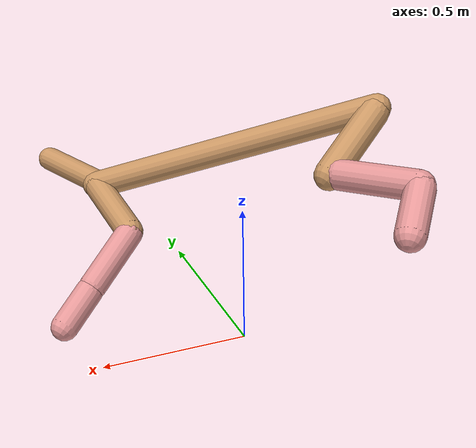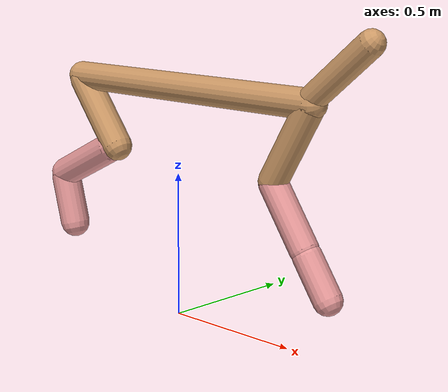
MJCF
<mujoco model="cheetah">
  <compiler angle="radian" coordinate="local" inertiafromgeom="true" settotalmass="14" />
  <default>
    <joint armature=".1" damping=".01" limited="true" solimplimit="0 .8 .03" solreflimit=".02 1" stiffness="8" />
    <geom conaffinity="0" condim="3" contype="1" friction="0.8 .1 .1" rgba="0.8 0.6 .4 1" solimp="0.0 0.8 0.01" solref="0.02 1" />
    <motor ctrllimited="true" ctrlrange="-1 1" />
  </default>
  <size nstack="300000" nuser_geom="1" />
  <option gravity="0 0 -9.81" timestep="0.01" />
  <worldbody>
    <body name="torso" pos="0.0 0.0 0.7977409576837379">
      <joint armature="0" axis="1 0 0" damping="0" limited="false" name="ignorex" pos="0 0 0" stiffness="0" type="slide" />
      <joint armature="0" axis="0 0 1" damping="0" limited="false" name="ignorez" pos="0 0 0" stiffness="0" type="slide" />
      <joint armature="0" axis="0 1 0" damping="0" limited="false" name="ignorey" pos="0 0 0" stiffness="0" type="hinge" />
      <geom fromto="-0.5 0.0 0.0 0.5793421692939226 0.0 0.0" name="torso" size="0.04958423123042548" type="capsule" />
      <geom axisangle="0 1 0 .87" name="head" pos="0.6793421692939224 0.0 0.1" size="0.043394904240748176 0.15" type="capsule" />

      <body name="bthigh" pos="-.5 0 0">
        <joint axis="0 1 0" damping="6" name="bthigh" pos="0 0 0" range="-.52 1.05" stiffness="240" type="hinge" />
        <geom axisangle="0 1 0 -3.8" name="bthigh" pos="0.09811762155892409 0.0 -0.12755290802660132" size="0.05357473837071949 0.14191266980682343" type="capsule" />
        <body name="bshin" pos="0.15623524311784817 0.0 -0.24510581605320264">
          <joint axis="0 1 0" damping="4.5" name="bshin" pos="0 0 0" range="-.785 .785" stiffness="180" type="hinge" />
          <geom axisangle="0 1 0 -2.03" name="bshin" pos="-0.13714338751133917 0.0 -0.06857169375566959" rgba="0.9 0.6 0.6 1" size="0.05357473837071949 0.14680621014498976" type="capsule" />
          <body name="bfoot" pos="-0.27428677502267834 0.0 -0.13714338751133917">
            <joint axis="0 1 0" damping="3" name="bfoot" pos="0 0 0" range="-.4 .785" stiffness="120" type="hinge" />
            <geom axisangle="0 1 0 -.27" name="bfoot" pos="0.02940863459245379 0.0 -0.0950879185156006" rgba="0.9 0.6 0.6 1" size="0.05357473837071949 0.09199855835752692" type="capsule" />
            <inertial mass="10" />
          </body>
        </body>
      </body>
      <body name="fthigh" pos="0.5793421692939225 0.0 0.0">
        <joint axis="0 1 0" damping="4.5" name="fthigh" pos="0 0 0" range="-1.5 0.8" stiffness="180" type="hinge" />
        <geom axisangle="0 1 0 .52" name="fthigh" pos="-0.07685156408540472 0.0 -0.13174553843212236" size="0.048425708416385015 0.14659785289951582" type="capsule" />
        <body name="fshin" pos="-0.15370312817080944 0.0 -0.2634910768642447">
          <joint axis="0 1 0" damping="3" name="fshin" pos="0 0 0" range="-1.2 1.1" stiffness="120" type="hinge" />
          <geom axisangle="0 1 0 -.6" name="fshin" pos="0.07134518743665079 0.0 -0.09878564414305493" rgba="0.9 0.6 0.6 1" size="0.048425708416385015 0.11683738652141862" type="capsule" />
          <body name="ffoot" pos="0.14269037487330158 0.0 -0.19757128828610987">
            <joint axis="0 1 0" damping="1.5" name="ffoot" pos="0 0 0" range="-3.1 -0.3" stiffness="60" type="hinge" />
            <geom axisangle="0 1 0 -.6" name="ffoot" pos="0.0488700748320934 0.0 -0.07602011640547862" rgba="0.9 0.6 0.6 1" size="0.048425708416385015 0.0771567646839557" type="capsule" />
            <inertial mass="10" />
          </body>
        </body>
      </body>
    </body>
  </worldbody>
  <actuator>
    <motor gear="120" joint="bthigh" name="bthigh" />
    <motor gear="90" joint="bshin" name="bshin" />
    <motor gear="60" joint="bfoot" name="bfoot" />
    <motor gear="120" joint="fthigh" name="fthigh" />
    <motor gear="60" joint="fshin" name="fshin" />
    <motor gear="30" joint="ffoot" name="ffoot" />
  </actuator>
</mujoco>
